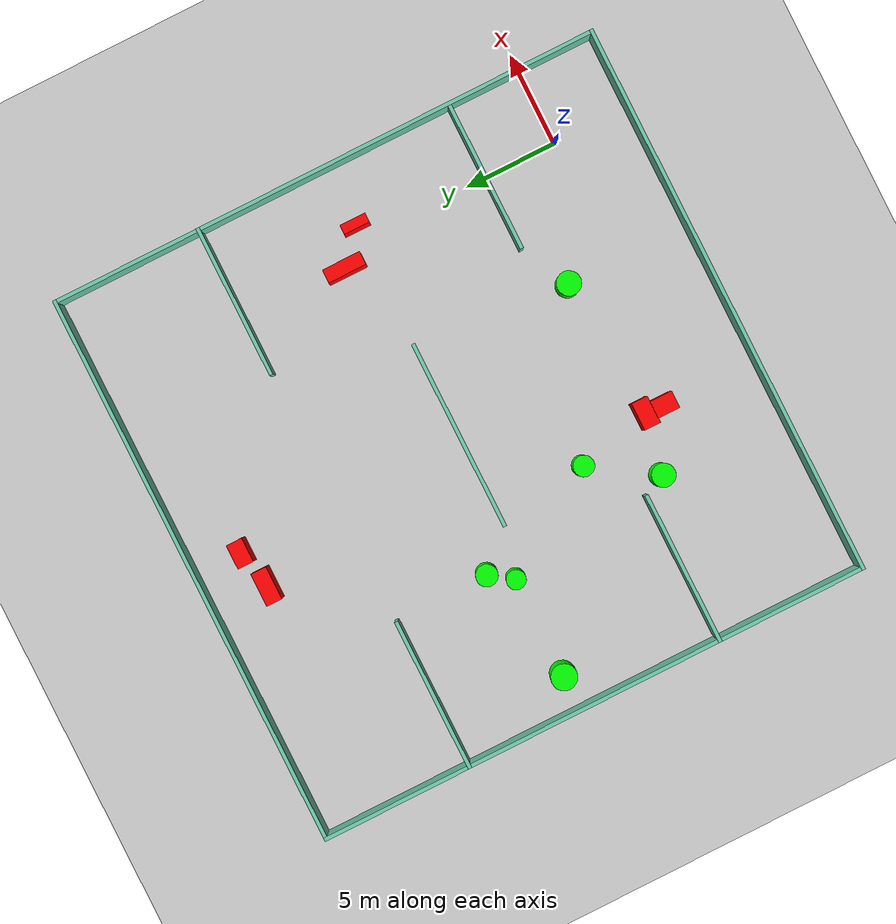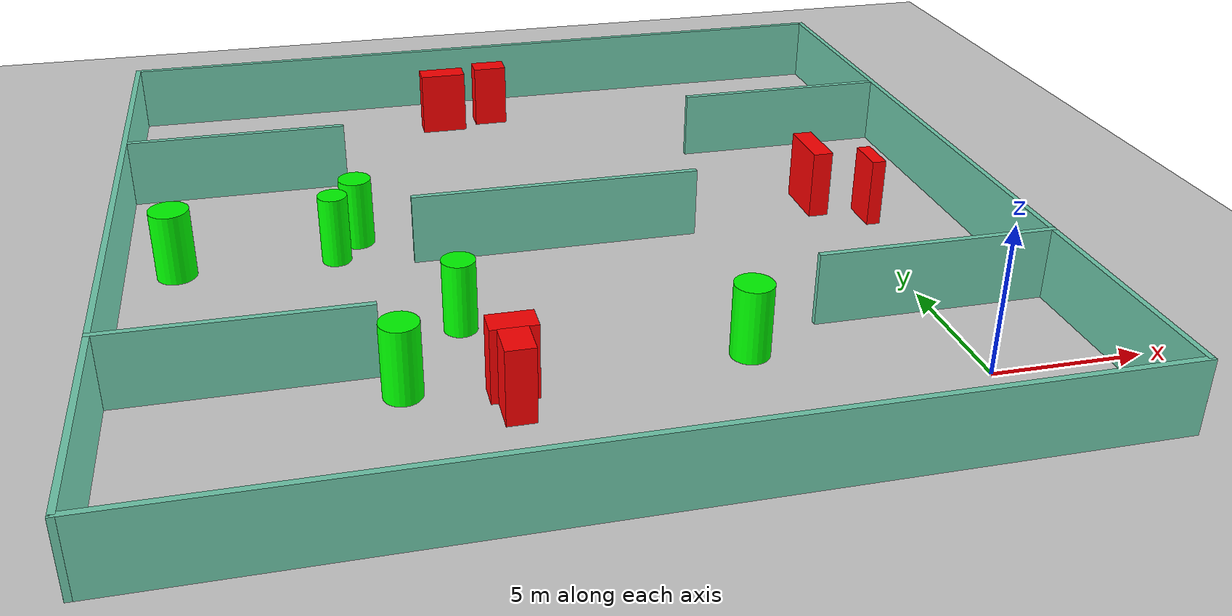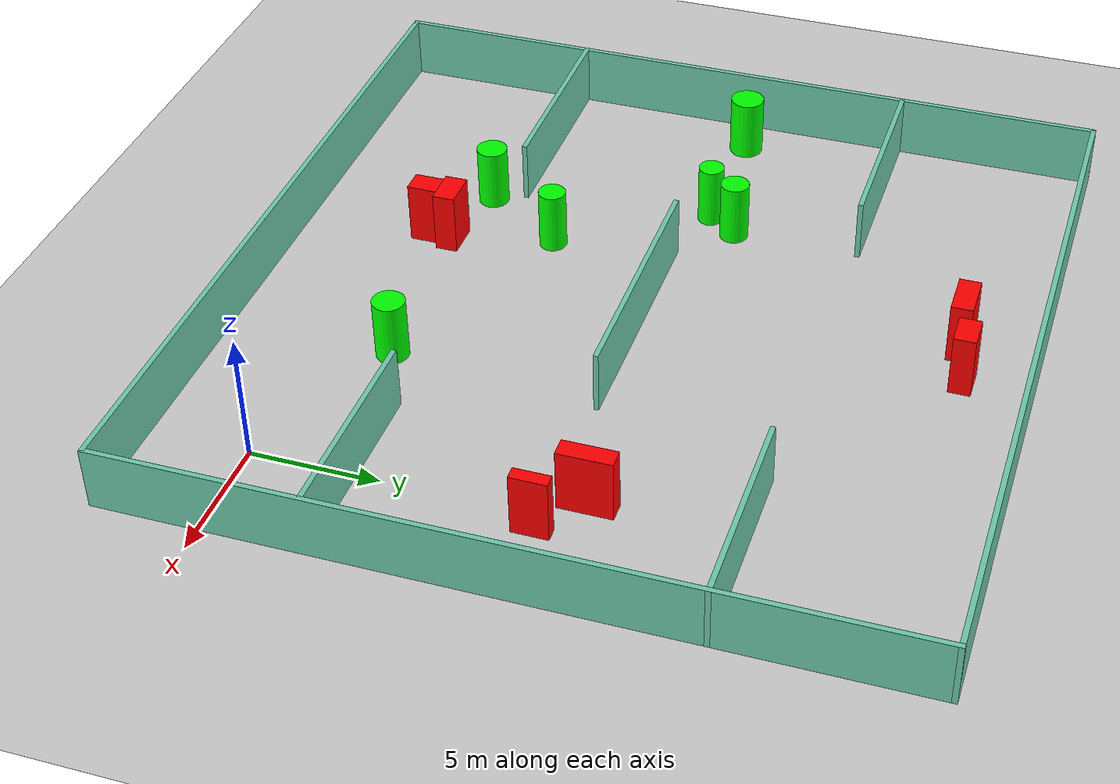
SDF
<sdf version="1.7">
 <world name="default">
  <light name="sun" type="directional">
   <pose>0 0 10 0 -0 0</pose>
   <diffuse>0.8 0.8 0.8 1</diffuse>
   <specular>0.2 0.2 0.2 1</specular>
   <attenuation>
    <range>1000</range>
    <constant>0.9</constant>
    <linear>0.01</linear>
    <quadratic>0.001</quadratic>
   </attenuation>
   <direction>-0.5 0.1 -0.9</direction>
   <spot><inner_angle>0</inner_angle><outer_angle>0</outer_angle><falloff>0</falloff></spot>
  </light>
  <model name="ground_plane">
   <static>1</static>
   <link name="link">
    <collision name="collision">
     <geometry><plane><normal>0 0 1</normal><size>100 100</size></plane></geometry>
     <surface>
      <contact><collide_bitmask>65535</collide_bitmask></contact>
      <friction><ode><mu>100</mu><mu2>50</mu2></ode></friction>
     </surface>
    </collision>
    <visual name="visual">
     <cast_shadows>0</cast_shadows>
     <geometry><plane><normal>0 0 1</normal><size>100 100</size></plane></geometry>
     <material>
      <script><uri>file://media/materials/scripts/gazebo.material</uri><name>Gazebo/Grey</name></script>
     </material>
    </visual>
   </link>
  </model>
  <gravity>0 0 -9.8</gravity>
  <magnetic_field>6e-06 2.3e-05 -4.2e-05</magnetic_field>
  <atmosphere type="adiabatic"/>
  <physics type="ode">
   <max_step_size>0.001</max_step_size>
   <real_time_factor>1</real_time_factor>
   <real_time_update_rate>1000</real_time_update_rate>
  </physics>
  <scene><ambient>0.4 0.4 0.4 1</ambient><background>0.7 0.7 0.7 1</background><shadows>1</shadows></scene>
  <spherical_coordinates>
   <surface_model>EARTH_WGS84</surface_model>
   <latitude_deg>0</latitude_deg>
   <longitude_deg>0</longitude_deg>
   <elevation>0</elevation>
   <heading_deg>0</heading_deg>
  </spherical_coordinates>
  <model name="my_base_walls">
   <link name="Wall_10">
    <collision name="Wall_10_Collision">
     <geometry><box><size>8.2 0.2 2.5</size></box></geometry>
     <pose>0 0 1.25 0 -0 0</pose>
    </collision>
    <visual name="Wall_10_Visual">
     <pose>0 0 1.25 0 -0 0</pose>
     <geometry><box><size>8.2 0.2 2.5</size></box></geometry>
     <material>
      <script><uri>file://media/materials/scripts/gazebo.material</uri><name>Gazebo/Grey</name></script>
      <ambient>0.435294 0.796078 0.67451 1</ambient>
     </material>
     <meta><layer>0</layer></meta>
    </visual>
    <pose>-11 -7 0 0 -0 0</pose>
   </link>
   <link name="Wall_12">
    <collision name="Wall_12_Collision">
     <geometry><box><size>8.2 0.2 2.5</size></box></geometry>
     <pose>0 0 1.25 0 -0 0</pose>
    </collision>
    <visual name="Wall_12_Visual">
     <pose>0 0 1.25 0 -0 0</pose>
     <geometry><box><size>8.2 0.2 2.5</size></box></geometry>
     <material>
      <script><uri>file://media/materials/scripts/gazebo.material</uri><name>Gazebo/Grey</name></script>
      <ambient>0.435294 0.796078 0.67451 1</ambient>
     </material>
     <meta><layer>0</layer></meta>
    </visual>
    <pose>-11 7 0 0 -0 0</pose>
   </link>
   <link name="Wall_14">
    <collision name="Wall_14_Collision">
     <geometry><box><size>8.2 0.2 2.5</size></box></geometry>
     <pose>0 0 1.25 0 -0 0</pose>
    </collision>
    <visual name="Wall_14_Visual">
     <pose>0 0 1.25 0 -0 0</pose>
     <geometry><box><size>8.2 0.2 2.5</size></box></geometry>
     <material>
      <script><uri>file://media/materials/scripts/gazebo.material</uri><name>Gazebo/Grey</name></script>
      <ambient>0.435294 0.796078 0.67451 1</ambient>
     </material>
     <meta><layer>0</layer></meta>
    </visual>
    <pose>11 7 0 0 -0 3.14159</pose>
   </link>
   <link name="Wall_16">
    <collision name="Wall_16_Collision">
     <geometry><box><size>10.2 0.2 2.5</size></box></geometry>
     <pose>0 0 1.25 0 -0 0</pose>
    </collision>
    <visual name="Wall_16_Visual">
     <pose>0 0 1.25 0 -0 0</pose>
     <geometry><box><size>10.2 0.2 2.5</size></box></geometry>
     <material>
      <script><uri>file://media/materials/scripts/gazebo.material</uri><name>Gazebo/Grey</name></script>
      <ambient>0.435294 0.796078 0.67451 1</ambient>
     </material>
     <meta><layer>0</layer></meta>
    </visual>
    <pose>0 0 0 0 -0 3.14159</pose>
   </link>
   <link name="Wall_2">
    <collision name="Wall_2_Collision">
     <geometry><box><size>30.2 0.2 2.5</size></box></geometry>
     <pose>0 0 1.25 0 -0 0</pose>
    </collision>
    <visual name="Wall_2_Visual">
     <pose>0 0 1.25 0 -0 0</pose>
     <geometry><box><size>30.2 0.2 2.5</size></box></geometry>
     <material>
      <script><uri>file://media/materials/scripts/gazebo.material</uri><name>Gazebo/Grey</name></script>
      <ambient>0.435294 0.796078 0.67451 1</ambient>
     </material>
     <meta><layer>0</layer></meta>
    </visual>
    <pose>0 -15 0 0 -0 3.14159</pose>
   </link>
   <link name="Wall_3">
    <collision name="Wall_3_Collision">
     <geometry><box><size>30.2 0.2 2.5</size></box></geometry>
     <pose>0 0 1.25 0 -0 0</pose>
    </collision>
    <visual name="Wall_3_Visual">
     <pose>0 0 1.25 0 -0 0</pose>
     <geometry><box><size>30.2 0.2 2.5</size></box></geometry>
     <material>
      <script><uri>file://media/materials/scripts/gazebo.material</uri><name>Gazebo/Grey</name></script>
      <ambient>0.435294 0.796078 0.67451 1</ambient>
     </material>
     <meta><layer>0</layer></meta>
    </visual>
    <pose>-15 0 0 0 -0 1.5708</pose>
   </link>
   <link name="Wall_4">
    <collision name="Wall_4_Collision">
     <geometry><box><size>30.2 0.2 2.5</size></box></geometry>
     <pose>0 0 1.25 0 -0 0</pose>
    </collision>
    <visual name="Wall_4_Visual">
     <pose>0 0 1.25 0 -0 0</pose>
     <geometry><box><size>30.2 0.2 2.5</size></box></geometry>
     <material>
      <script><uri>file://media/materials/scripts/gazebo.material</uri><name>Gazebo/Grey</name></script>
      <ambient>0.435294 0.796078 0.67451 1</ambient>
     </material>
     <meta><layer>0</layer></meta>
    </visual>
    <pose>0 15 0 0 -0 0</pose>
   </link>
   <link name="Wall_6">
    <collision name="Wall_6_Collision">
     <geometry><box><size>30.2 0.2 2.5</size></box></geometry>
     <pose>0 0 1.25 0 -0 0</pose>
    </collision>
    <visual name="Wall_6_Visual">
     <pose>0 0 1.25 0 -0 0</pose>
     <geometry><box><size>30.2 0.2 2.5</size></box></geometry>
     <material>
      <script><uri>file://media/materials/scripts/gazebo.material</uri><name>Gazebo/Grey</name></script>
      <ambient>0.435294 0.796078 0.67451 1</ambient>
     </material>
     <meta><layer>0</layer></meta>
    </visual>
    <pose>15 0 0 0 -0 1.5708</pose>
   </link>
   <link name="Wall_8">
    <collision name="Wall_8_Collision">
     <geometry><box><size>8.2 0.2 2.5</size></box></geometry>
     <pose>0 0 1.25 0 -0 0</pose>
    </collision>
    <visual name="Wall_8_Visual">
     <pose>0 0 1.25 0 -0 0</pose>
     <geometry><box><size>8.2 0.2 2.5</size></box></geometry>
     <material>
      <script><uri>file://media/materials/scripts/gazebo.material</uri><name>Gazebo/Grey</name></script>
      <ambient>0.435294 0.796078 0.67451 1</ambient>
     </material>
     <meta><layer>0</layer></meta>
    </visual>
    <pose>11 -7 0 0 -0 3.14159</pose>
   </link>
   <static>1</static>
   <pose>-11 11 0 0 -0 0</pose>
  </model>
  <model name="cylinder1">
   <static>1</static>
   <link name="link">
    <inertial>
     <mass>1</mass>
     <inertia><ixx>0.5</ixx><ixy>0</ixy><ixz>0</ixz><iyy>0.5</iyy><iyz>0</iyz><izz>1</izz></inertia>
    </inertial>
    <collision name="collision">
     <geometry><cylinder><radius>0.5115262731891261</radius><length>2.5</length></cylinder></geometry>
    </collision>
    <visual name="visual">
     <geometry><cylinder><radius>0.5115262731891261</radius><length>2.5</length></cylinder></geometry>
     <material>
      <ambient>0 1 0 1</ambient>
      <diffuse>0 1 0 1</diffuse>
      <specular>0.1 0.1 0.1 1</specular>
      <emissive>0 0 0 0</emissive>
     </material>
    </visual>
   </link>
   <pose>-18.72649869464945 11.700751034133264 1.25 0 0 0</pose>
  </model>
  <model name="cylinder2">
   <static>1</static>
   <link name="link">
    <inertial>
     <mass>1</mass>
     <inertia><ixx>0.5</ixx><ixy>0</ixy><ixz>0</ixz><iyy>0.5</iyy><iyz>0</iyz><izz>1</izz></inertia>
    </inertial>
    <collision name="collision">
     <geometry><cylinder><radius>0.6196865307438103</radius><length>2.5</length></cylinder></geometry>
    </collision>
    <visual name="visual">
     <geometry><cylinder><radius>0.6196865307438103</radius><length>2.5</length></cylinder></geometry>
     <material>
      <ambient>0 1 0 1</ambient>
      <diffuse>0 1 0 1</diffuse>
      <specular>0.1 0.1 0.1 1</specular>
      <emissive>0 0 0 0</emissive>
     </material>
    </visual>
   </link>
   <pose>-17.390500646521367 2.781862380992373 1.25 0 0 0</pose>
  </model>
  <model name="cylinder3">
   <static>1</static>
   <link name="link">
    <inertial>
     <mass>1</mass>
     <inertia><ixx>0.5</ixx><ixy>0</ixy><ixz>0</ixz><iyy>0.5</iyy><iyz>0</iyz><izz>1</izz></inertia>
    </inertial>
    <collision name="collision">
     <geometry><cylinder><radius>0.5736794108759038</radius><length>2.5</length></cylinder></geometry>
    </collision>
    <visual name="visual">
     <geometry><cylinder><radius>0.5736794108759038</radius><length>2.5</length></cylinder></geometry>
     <material>
      <ambient>0 1 0 1</ambient>
      <diffuse>0 1 0 1</diffuse>
      <specular>0.1 0.1 0.1 1</specular>
      <emissive>0 0 0 0</emissive>
     </material>
    </visual>
   </link>
   <pose>-17.876837589824113 12.91344528968517 1.25 0 0 0</pose>
  </model>
  <model name="cylinder4">
   <static>1</static>
   <link name="link">
    <inertial>
     <mass>1</mass>
     <inertia><ixx>0.5</ixx><ixy>0</ixy><ixz>0</ixz><iyy>0.5</iyy><iyz>0</iyz><izz>1</izz></inertia>
    </inertial>
    <collision name="collision">
     <geometry><cylinder><radius>0.6407116921986427</radius><length>2.5</length></cylinder></geometry>
    </collision>
    <visual name="visual">
     <geometry><cylinder><radius>0.6407116921986427</radius><length>2.5</length></cylinder></geometry>
     <material>
      <ambient>0 1 0 1</ambient>
      <diffuse>0 1 0 1</diffuse>
      <specular>0.1 0.1 0.1 1</specular>
      <emissive>0 0 0 0</emissive>
     </material>
    </visual>
   </link>
   <pose>-6.711235409292062 2.686868964746176 1.25 0 0 0</pose>
  </model>
  <model name="cylinder5">
   <static>1</static>
   <link name="link">
    <inertial>
     <mass>1</mass>
     <inertia><ixx>0.5</ixx><ixy>0</ixy><ixz>0</ixz><iyy>0.5</iyy><iyz>0</iyz><izz>1</izz></inertia>
    </inertial>
    <collision name="collision">
     <geometry><cylinder><radius>0.6838317521971791</radius><length>2.5</length></cylinder></geometry>
    </collision>
    <visual name="visual">
     <geometry><cylinder><radius>0.6838317521971791</radius><length>2.5</length></cylinder></geometry>
     <material>
      <ambient>0 1 0 1</ambient>
      <diffuse>0 1 0 1</diffuse>
      <specular>0.1 0.1 0.1 1</specular>
      <emissive>0 0 0 0</emissive>
     </material>
    </visual>
   </link>
   <pose>-24.14283948956684 11.75657169538229 1.25 0 0 0</pose>
  </model>
  <model name="cylinder6">
   <static>1</static>
   <link name="link">
    <inertial>
     <mass>1</mass>
     <inertia><ixx>0.5</ixx><ixy>0</ixy><ixz>0</ixz><iyy>0.5</iyy><iyz>0</iyz><izz>1</izz></inertia>
    </inertial>
    <collision name="collision">
     <geometry><cylinder><radius>0.5519077732456739</radius><length>2.5</length></cylinder></geometry>
    </collision>
    <visual name="visual">
     <geometry><cylinder><radius>0.5519077732456739</radius><length>2.5</length></cylinder></geometry>
     <material>
      <ambient>0 1 0 1</ambient>
      <diffuse>0 1 0 1</diffuse>
      <specular>0.1 0.1 0.1 1</specular>
      <emissive>0 0 0 0</emissive>
     </material>
    </visual>
   </link>
   <pose>-15.185302431800391 6.13033453966403 1.25 0 0 0</pose>
  </model>
  <model name="box1">
   <static>1</static>
   <link name="link">
    <inertial>
     <mass>1</mass>
     <inertia><ixx>0.083</ixx><ixy>0</ixy><ixz>0</ixz><iyy>0.083</iyy><iyz>0</iyz><izz>0.083</izz></inertia>
    </inertial>
    <collision name="collision">
     <geometry><box><size>1.3221548214922398 0.8567202983371331 2.5</size></box></geometry>
    </collision>
    <visual name="visual">
     <geometry><box><size>1.3221548214922398 0.8567202983371331 2.5</size></box></geometry>
     <material>
      <ambient>1 0 0 1</ambient>
      <diffuse>1 0 0 1</diffuse>
      <specular>0.1 0.1 0.1 1</specular>
      <emissive>0 0 0 0</emissive>
     </material>
    </visual>
    <sensor name="my_contact" type="contact">
     <contact><collision>box_collision</collision><topic>__default_topic__</topic></contact>
    </sensor>
   </link>
   <pose>-11.345767698387423 23.424929576287706 1.25 0 0 0</pose>
  </model>
  <model name="box2">
   <static>1</static>
   <link name="link">
    <inertial>
     <mass>1</mass>
     <inertia><ixx>0.083</ixx><ixy>0</ixy><ixz>0</ixz><iyy>0.083</iyy><iyz>0</iyz><izz>0.083</izz></inertia>
    </inertial>
    <collision name="collision">
     <geometry><box><size>0.5057833201371846 1.4147250939185418 2.5</size></box></geometry>
    </collision>
    <visual name="visual">
     <geometry><box><size>0.5057833201371846 1.4147250939185418 2.5</size></box></geometry>
     <material>
      <ambient>1 0 0 1</ambient>
      <diffuse>1 0 0 1</diffuse>
      <specular>0.1 0.1 0.1 1</specular>
      <emissive>0 0 0 0</emissive>
     </material>
    </visual>
    <sensor name="my_contact" type="contact">
     <contact><collision>box_collision</collision><topic>__default_topic__</topic></contact>
    </sensor>
   </link>
   <pose>0.7667556330178726 10.89130981586996 1.25 0 0 0</pose>
  </model>
  <model name="box3">
   <static>1</static>
   <link name="link">
    <inertial>
     <mass>1</mass>
     <inertia><ixx>0.083</ixx><ixy>0</ixy><ixz>0</ixz><iyy>0.083</iyy><iyz>0</iyz><izz>0.083</izz></inertia>
    </inertial>
    <collision name="collision">
     <geometry><box><size>0.7277866738269726 2.0899437893097876 2.5</size></box></geometry>
    </collision>
    <visual name="visual">
     <geometry><box><size>0.7277866738269726 2.0899437893097876 2.5</size></box></geometry>
     <material>
      <ambient>1 0 0 1</ambient>
      <diffuse>1 0 0 1</diffuse>
      <specular>0.1 0.1 0.1 1</specular>
      <emissive>0 0 0 0</emissive>
     </material>
    </visual>
    <sensor name="my_contact" type="contact">
     <contact><collision>box_collision</collision><topic>__default_topic__</topic></contact>
    </sensor>
   </link>
   <pose>-0.9392545123153937 12.335615779434821 1.25 0 0 0</pose>
  </model>
  <model name="box4">
   <static>1</static>
   <link name="link">
    <inertial>
     <mass>1</mass>
     <inertia><ixx>0.083</ixx><ixy>0</ixy><ixz>0</ixz><iyy>0.083</iyy><iyz>0</iyz><izz>0.083</izz></inertia>
    </inertial>
    <collision name="collision">
     <geometry><box><size>1.8048518145212256 0.8480790092203512 2.5</size></box></geometry>
    </collision>
    <visual name="visual">
     <geometry><box><size>1.8048518145212256 0.8480790092203512 2.5</size></box></geometry>
     <material>
      <ambient>1 0 0 1</ambient>
      <diffuse>1 0 0 1</diffuse>
      <specular>0.1 0.1 0.1 1</specular>
      <emissive>0 0 0 0</emissive>
     </material>
    </visual>
    <sensor name="my_contact" type="contact">
     <contact><collision>box_collision</collision><topic>__default_topic__</topic></contact>
    </sensor>
   </link>
   <pose>-13.417073077262723 22.991155290746256 1.25 0 0 0</pose>
  </model>
  <model name="box5">
   <static>1</static>
   <link name="link">
    <inertial>
     <mass>1</mass>
     <inertia><ixx>0.083</ixx><ixy>0</ixy><ixz>0</ixz><iyy>0.083</iyy><iyz>0</iyz><izz>0.083</izz></inertia>
    </inertial>
    <collision name="collision">
     <geometry><box><size>0.9332044600457783 1.2114188381738993 2.5</size></box></geometry>
    </collision>
    <visual name="visual">
     <geometry><box><size>0.9332044600457783 1.2114188381738993 2.5</size></box></geometry>
     <material>
      <ambient>1 0 0 1</ambient>
      <diffuse>1 0 0 1</diffuse>
      <specular>0.1 0.1 0.1 1</specular>
      <emissive>0 0 0 0</emissive>
     </material>
    </visual>
    <sensor name="my_contact" type="contact">
     <contact><collision>box_collision</collision><topic>__default_topic__</topic></contact>
    </sensor>
   </link>
   <pose>-14.270043687218411 1.1492936951488701 1.25 0 0 0</pose>
  </model>
  <model name="box6">
   <static>1</static>
   <link name="link">
    <inertial>
     <mass>1</mass>
     <inertia><ixx>0.083</ixx><ixy>0</ixy><ixz>0</ixz><iyy>0.083</iyy><iyz>0</iyz><izz>0.083</izz></inertia>
    </inertial>
    <collision name="collision">
     <geometry><box><size>1.483323301958979 0.8924726356946096 2.5</size></box></geometry>
    </collision>
    <visual name="visual">
     <geometry><box><size>1.483323301958979 0.8924726356946096 2.5</size></box></geometry>
     <material>
      <ambient>1 0 0 1</ambient>
      <diffuse>1 0 0 1</diffuse>
      <specular>0.1 0.1 0.1 1</specular>
      <emissive>0 0 0 0</emissive>
     </material>
    </visual>
    <sensor name="my_contact" type="contact">
     <contact><collision>box_collision</collision><topic>__default_topic__</topic></contact>
    </sensor>
   </link>
   <pose>-14.225690809403012 2.1769983055284285 1.25 0 0 0</pose>
  </model>
 </world>
</sdf>
